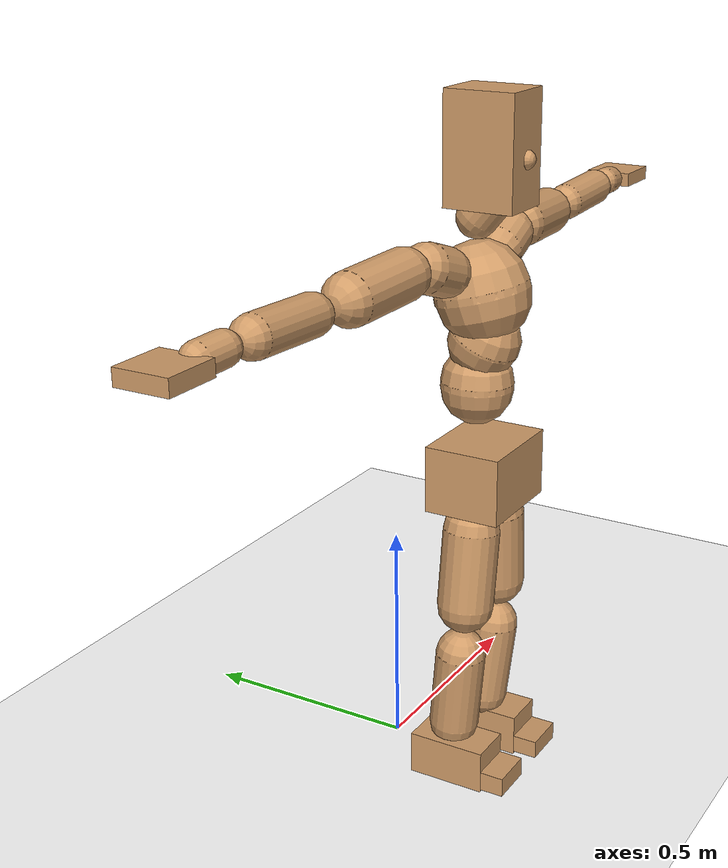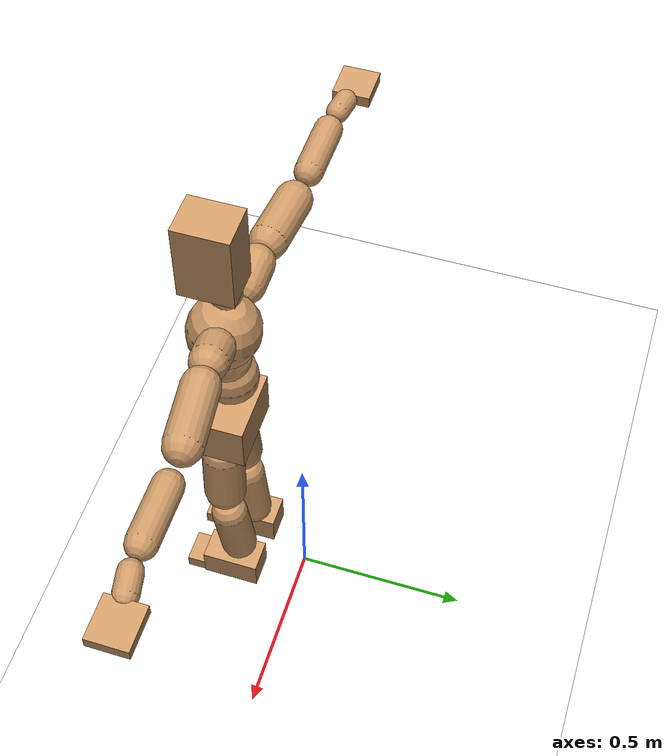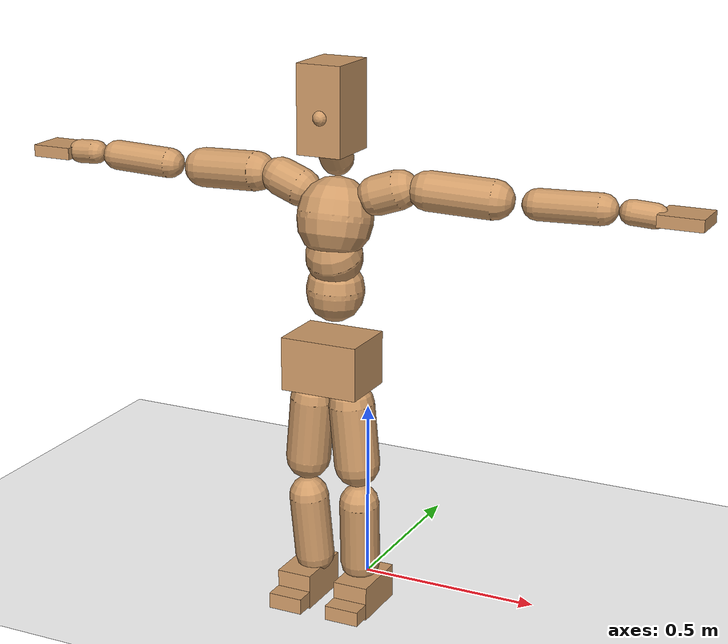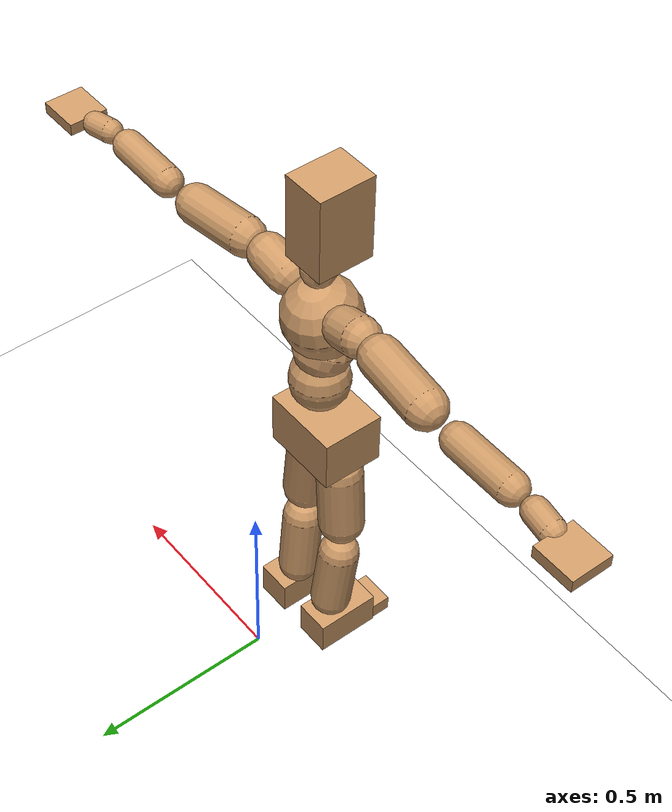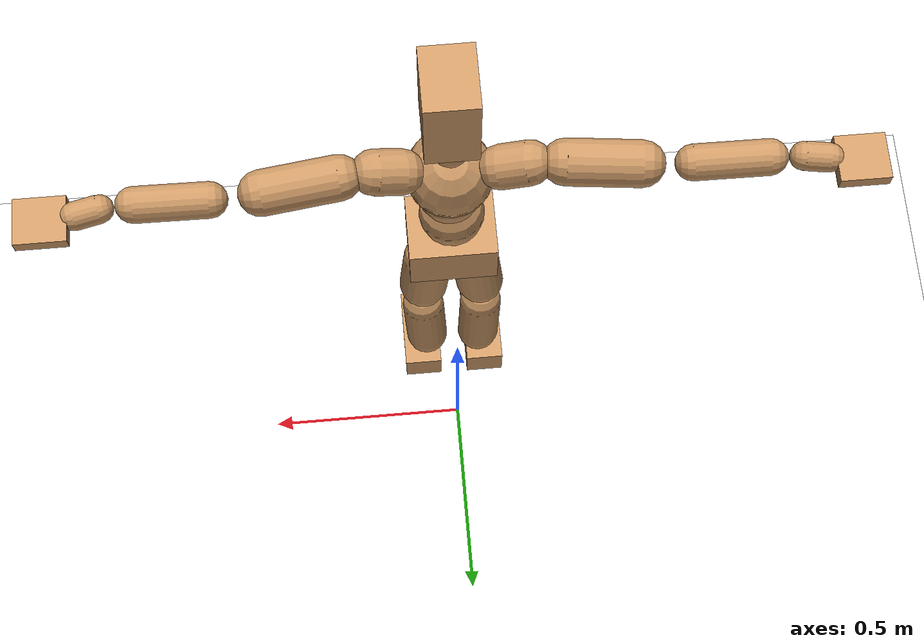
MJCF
<mujoco model="humanoid">
  <option integrator="implicitfast" />

  <visual>
    <global offwidth="1280" offheight="960" />
    <headlight active="1" ambient="0.34 0.34 0.34" diffuse="0.5 0.5 0.5" />
  </visual>

  <default>
    <joint damping="2" stiffness="2" armature="0.01" limited="true" solimplimit="0 .99 .01" />
    <geom condim="1" friction="0.7 0.005 0.0001" solimp=".99 .99 .003" solref="0.015 1" margin="0.001" rgba="0.8 0.6 .4 1" />
    <default class="smplcontact">
      <geom condim="3" friction="1. 0.005 0.0001" solref="0.015 1" solimp="0.98 0.98 0.001" priority="1" />
    </default>
    <default class="stiff_medium">
      <joint stiffness="10" />
    </default>
    <default class="stiff_medium_higher">
      <joint stiffness="50" />
    </default>
    <default class="stiff_high">
      <joint stiffness="100" />
    </default>
  </default>

  <asset>
    <texture type="skybox" builtin="gradient" rgb1="0.99 0.99 0.99" rgb2="0.608 0.828 0.892" width="100" />
    <texture builtin="flat" height="1278" mark="cross" markrgb="1 1 1" name="texgeom" random="0.01" rgb1="0.8 0.6 0.4" rgb2="0.8 0.6 0.4" type="cube" width="127" />
    <texture name="texplane" type="2d" builtin="checker" markrgb="1 1 1" rgb1="0.756 0.772 0.76" rgb2="0.6 0.6 0.6" width="100" height="100" />
    <material name="MatPlane" reflectance="0.5" texture="texplane" texrepeat="1 1" texuniform="true" />
    <material name="geom" texture="texgeom" texuniform="true" />
  </asset>

  <worldbody>
    <light name="tracking_light" pos="0 0 7" dir="0 0 -1" directional="true" cutoff="100" exponent="1" diffuse="1 1 1" specular="0.1 0.1 0.1" mode="trackcom" />
    <camera name="back" pos="0 3 2.4" xyaxes="-1 0 0 0 -1 2" mode="trackcom" />
    <camera name="side" pos="-3 0 2.4" xyaxes="0 -1 0 1 0 2" mode="trackcom" />
    <camera name="front_side" pos="-2.8 -2.8 0.8" xyaxes="0.5 -0.5 0 0.1 0.1 1" mode="trackcom" />
    <geom condim="3" name="floor" pos="0 0 0" rgba="1 1 1 1" size="100 100 .2" type="plane" material="MatPlane" />
    <body name="Pelvis" pos="-0.0018 -0.2233 0.714475" euler="90 0 0">
      <site name="Pelvis" size="0.01" />
      <freejoint name="Pelvis" />
      <geom type="box" pos="-0.0000 -0.0121 -0.0055" size="0.1069 0.0722 0.083" quat="1.0000 0.0000 0.0000 0.0000" density="3165.830099" name="Pelvis" />
      <body name="L_Hip" pos="0.052125 -0.06855 -0.0051">
        <joint name="L_Hip_x" type="hinge" pos="0 0 0" axis="1 0 0" stiffness="6.246094795918367" range="-160.0 22.92" class="stiff_medium" damping="8.291075045961078" armature="0.004891370984683403"/>
        <joint name="L_Hip_y" type="hinge" pos="0 0 0" axis="0 1 0" stiffness="6.283432346938776" range="-70.0 70.0" class="stiff_medium" damping="6.622206330553065" armature="0.006979245460609143"/>
        <joint name="L_Hip_z" type="hinge" pos="0 0 0" axis="0 0 1" stiffness="6.280236020408163" range="-28.65 90.0" class="stiff_medium" damping="5.5406378528423375" armature="0.004888139190404852"/>
        <geom type="capsule" density="2040.816327" fromto="0.005175 -0.05625 -0.000675 0.02055 -0.22515 -0.0027" size="0.0615" name="L_Hip" />
        <body name="L_Knee" pos="0.025725 -0.2814 -0.003375">
          <joint name="L_Knee_x" type="hinge" pos="0 0 0" axis="1 0 0" range="-5.16 171.89" damping="4.629153389768343" armature="0.005182973512521496" stiffness="1.292034693877551"/>
          <joint name="L_Knee_y" type="hinge" pos="0 0 0" axis="0 1 0" range="-4.58 6.88" damping="5.469884734588187" armature="0.007381715461698134" stiffness="1.2666279591836735"/>
          <joint name="L_Knee_z" type="hinge" pos="0 0 0" axis="0 0 1" range="-6.88 4.58" damping="4.641672627872137" armature="0.005166231774225991" stiffness="1.3032422448979593"/>
          <geom type="capsule" density="1234.567901" fromto="-0.002025 -0.0597 -0.006525 -0.008175 -0.2388 -0.02625" size="0.0541" name="L_Knee" />
          <body name="L_Ankle" pos="-0.0102 -0.2985 -0.032775">
            <joint name="L_Ankle_x" type="hinge" pos="0 0 0" axis="1 0 0" range="-45.84 45.84" class="stiff_medium" damping="4.385268345779539" armature="0.007122436468331859" stiffness="7.5"/>
            <joint name="L_Ankle_y" type="hinge" pos="0 0 0" axis="0 1 0" range="-74.48 22.92" class="stiff_medium" damping="2.2090505910878844" armature="0.007229488168867751" stiffness="7.5"/>
            <joint name="L_Ankle_z" type="hinge" pos="0 0 0" axis="0 0 1" range="-4.58 4.58" class="stiff_medium" damping="4.627293284407406" armature="0.00793031227404514" stiffness="7.5"/>
            <geom type="box" pos="0.017475 -0.017925 0.01815" size="0.0483 0.0464 0.085" quat="1.0000 0.0000 0.0000 0.0000" density="449.071558" name="L_Ankle" class="smplcontact" />
            <body name="L_Toe" pos="0.0198 -0.04185 0.089475">
              <joint name="L_Toe_x" type="hinge" pos="0 0 0" axis="1 0 0" range="-91.67 22.92" armature="0.00833667788750382" damping="1.5814560905226378" stiffness="1.5"/>
              <joint name="L_Toe_y" type="hinge" pos="0 0 0" axis="0 1 0" range="-4.58 4.58" armature="0.008828055290798205" damping="1.6273956455759186" stiffness="1.5"/>
              <joint name="L_Toe_z" type="hinge" pos="0 0 0" axis="0 0 1" range="-4.58 4.58" armature="0.009821593951993812" damping="1.7165308577471432" stiffness="1.5"/>
              <geom type="box" pos="-0.00225 0.004125 0.0186" size="0.0478 0.02 0.0496" quat="1.0000 0.0000 0.0000 0.0000" density="423.206892" name="L_Toe" class="smplcontact" />
            </body>
          </body>
        </body>
      </body>
      <body name="R_Hip" pos="-0.050775 -0.067875 -0.003225">
        <joint name="R_Hip_x" type="hinge" pos="0 0 0" axis="1 0 0" stiffness="6.246094795918367" range="-160.0 22.92" class="stiff_medium" damping="8.291075045961078" armature="0.004891370984683403"/>
        <joint name="R_Hip_y" type="hinge" pos="0 0 0" axis="0 1 0" stiffness="6.283432346938776" range="-70.0 70.0" class="stiff_medium" damping="6.622206330553065" armature="0.006979245460609143"/>
        <joint name="R_Hip_z" type="hinge" pos="0 0 0" axis="0 0 1" stiffness="6.280236020408163" range="-90.0 28.65" class="stiff_medium" damping="5.5406378528423375" armature="0.004888139190404852"/>
        <geom type="capsule" density="2040.816327" fromto="-0.005775 -0.057375 -0.00135 -0.02295 -0.229575 -0.005325" size="0.0606" name="R_Hip" />
        <body name="R_Knee" pos="-0.028725 -0.28695 -0.006675">
          <joint name="R_Knee_x" type="hinge" pos="0 0 0" axis="1 0 0" range="-5.16 171.89" damping="4.629153389768343" armature="0.005182973512521496" stiffness="1.292034693877551"/>
          <joint name="R_Knee_y" type="hinge" pos="0 0 0" axis="0 1 0" range="-6.88 4.58" damping="5.469884734588187" armature="0.007381715461698134" stiffness="1.2666279591836735"/>
          <joint name="R_Knee_z" type="hinge" pos="0 0 0" axis="0 0 1" range="-4.58 6.88" damping="4.641672627872137" armature="0.005166231774225991" stiffness="1.3032422448979593"/>
          <geom type="capsule" density="1234.567901" fromto="0.0024 -0.059775 -0.006375 0.00945 -0.239025 -0.02535" size="0.0541" name="R_Knee" />
          <body name="R_Ankle" pos="0.01185 -0.2988 -0.031725">
            <joint name="R_Ankle_x" type="hinge" pos="0 0 0" axis="1 0 0" range="-45.84 45.84" class="stiff_medium" damping="4.385268345779539" armature="0.007122436468331859" stiffness="7.5"/>
            <joint name="R_Ankle_y" type="hinge" pos="0 0 0" axis="0 1 0" range="-22.92 74.48" class="stiff_medium" damping="2.2090505910878844" armature="0.007229488168867751" stiffness="7.5"/>
            <joint name="R_Ankle_z" type="hinge" pos="0 0 0" axis="0 0 1" range="-4.58 4.58" class="stiff_medium" damping="4.627293284407406" armature="0.00793031227404514" stiffness="7.5"/>
            <geom type="box" pos="-0.0159 -0.01305 0.0192" size="0.0483 0.0478 0.0865" quat="1.0000 0.0000 0.0000 0.0000" density="434.700981" name="R_Ankle" class="smplcontact" />
            <body name="R_Toe" pos="-0.01905 -0.036075 0.092475">
              <joint name="R_Toe_x" type="hinge" pos="0 0 0" axis="1 0 0" range="-91.67 22.92" armature="0.00833667788750382" damping="1.5814560905226378" stiffness="1.5"/>
              <joint name="R_Toe_y" type="hinge" pos="0 0 0" axis="0 1 0" range="-4.58 4.58" armature="0.008828055290798205" damping="1.6273956455759186" stiffness="1.5"/>
              <joint name="R_Toe_z" type="hinge" pos="0 0 0" axis="0 0 1" range="-4.58 4.58" armature="0.009821593951993812" damping="1.7165308577471432" stiffness="1.5"/>
              <geom type="box" pos="0.00315 0.003375 0.017025" size="0.0479 0.0216 0.0493" quat="1.0000 0.0000 0.0000 0.0000" density="407.384095" name="R_Toe" class="smplcontact" />
            </body>
          </body>
        </body>
      </body>
      <body name="Torso" pos="-0.0025 0.109 -0.0267">
        <joint name="Torso_x" type="hinge" pos="0 0 0" axis="1 0 0" range="-25.78 57.3" class="stiff_medium" damping="15.601174334598198" armature="0.01047626555893536" stiffness="10.325844081632653"/>
        <joint name="Torso_y" type="hinge" pos="0 0 0" axis="0 1 0" range="-57.3 57.3" class="stiff_high" damping="22.82133861051783" armature="0.012668353656497756" stiffness="102.77844897959183"/>
        <joint name="Torso_z" type="hinge" pos="0 0 0" axis="0 0 1" range="-34.38 34.38" class="stiff_high" damping="21.414857312023496" armature="0.011223378132891131" stiffness="102.15197872340424"/>
        <geom type="capsule" density="2040.816327" fromto="0.0025 0.0608 0.0005 0.003 0.0743 0.0006" size="0.0769" name="Torso" />
        <body name="Spine" pos="0.0055 0.1352 0.0011">
          <joint name="Spine_x" type="hinge" pos="0 0 0" axis="1 0 0" stiffness="10.390365918367348" range="-25.78 57.3" class="stiff_medium" damping="15.726774537984076" armature="0.010579519926301018"/>
          <joint name="Spine_y" type="hinge" pos="0 0 0" axis="0 1 0" stiffness="10.39918551020408" range="-57.3 57.3" class="stiff_high" damping="9.188969975740159" armature="0.012686866367473126"/>
          <joint name="Spine_z" type="hinge" pos="0 0 0" axis="0 0 1" stiffness="20.94420693877551" range="-34.38 34.38" class="stiff_high" damping="13.309204568844793" armature="0.011746481097584327"/>
          <geom type="capsule" density="2040.816327" fromto="0.0007 0.0238 0.0114 0.0008 0.0291 0.014" size="0.0755" name="Spine" />
          <body name="Chest" pos="0.0015 0.0529 0.0254">
            <joint name="Chest_x" type="hinge" pos="0 0 0" axis="1 0 0" stiffness="10.58973530612245" range="-25.78 57.3" class="stiff_medium" damping="15.92350290907025" armature="0.010641665414267271"/>
            <joint name="Chest_y" type="hinge" pos="0 0 0" axis="0 1 0" stiffness="11.123088958333334" range="-57.3 57.3" class="stiff_high" damping="9.504893386205907" armature="0.012690803368218215"/>
            <joint name="Chest_z" type="hinge" pos="0 0 0" axis="0 0 1" stiffness="21.003702448979592" range="-34.38 34.38" class="stiff_high" damping="13.458190566120907" armature="0.011976915720374785"/>
            <geom type="capsule" density="2040.816327" fromto="-0.0009 0.0682 -0.0173 -0.001 0.0833 -0.0212" size="0.1002" name="Chest" />
            <body name="Neck" pos="-0.0028 0.2139 -0.0429">
              <joint name="Neck_x" type="hinge" pos="0 0 0" axis="1 0 0" range="-28.65 57.3" class="stiff_medium_higher" damping="10.000000000000016" armature="0.010000000000000033" stiffness="50.0"/>
              <joint name="Neck_y" type="hinge" pos="0 0 0" axis="0 1 0" range="-40.11 40.11" class="stiff_medium_higher" damping="10.0" armature="0.01" stiffness="50.0"/>
              <joint name="Neck_z" type="hinge" pos="0 0 0" axis="0 0 1" range="-40.11 40.11" class="stiff_medium_higher" damping="10.000000000000018" armature="0.010000000000000035" stiffness="50.0"/>
              <geom type="capsule" density="1000" fromto="0.001 0.013 0.0103 0.0041 0.052 0.0411" size="0.0436" name="Neck" />
              <body name="Head" pos="0.0052 0.065 0.0513">
                <joint name="Head_x" type="hinge" pos="0 0 0" axis="1 0 0" range="-28.65 57.3" class="stiff_medium_higher" damping="2.0000000000000058" armature="0.010000000000000057" stiffness="50.0"/>
                <joint name="Head_y" type="hinge" pos="0 0 0" axis="0 1 0" range="-40.11 40.11" class="stiff_medium_higher" damping="1.9999999999999998" armature="0.009999999999999998" stiffness="50.0"/>
                <joint name="Head_z" type="hinge" pos="0 0 0" axis="0 0 1" range="-40.11 40.11" class="stiff_medium_higher" damping="2.0000000000000098" armature="0.010000000000000097" stiffness="50.0"/>
                <geom type="box" pos="-0.0042 0.0876 -0.0116" size="0.0606 0.1154 0.076" quat="1.0000 0.0000 0.0000 0.0000" density="1018.069894" name="Head" />
                <geom type="capsule" name="nose" size="0.02 0.01" pos="0 0.07 0.05" quat="1 0 0 0" mass="0" contype="0" conaffinity="0" />
              </body>
            </body>
            <body name="L_Thorax" pos="0.08668 0.13387 -0.03751">
              <joint name="L_Thorax_x" type="hinge" pos="0 0 0" axis="1 0 0" range="-10.89 4.58" class="stiff_medium_higher" damping="23.48495305351737" armature="0.011814903262347243" stiffness="58.352468877551026"/>
              <joint name="L_Thorax_y" type="hinge" pos="0 0 0" axis="0 1 0" range="-28.65 17.19" class="stiff_medium_higher" damping="24.4348841915211" armature="0.012759387174304939" stiffness="58.49257857142858"/>
              <joint name="L_Thorax_z" type="hinge" pos="0 0 0" axis="0 0 1" range="-31.51 40.11" class="stiff_medium_higher" damping="24.435380867856836" armature="0.012760243243334092" stiffness="58.491032142857144"/>
              <geom type="capsule" density="1000" fromto="0.02002 0.00671 -0.00198 0.08008 0.02684 -0.00781" size="0.0521" name="L_Thorax" />
              <body name="L_Shoulder" pos="0.1001 0.03355 -0.00979">
                <joint name="L_Shoulder_x" type="hinge" pos="0 0 0" axis="1 0 0" range="-97.4 97.4" class="stiff_medium" damping="6.925509502214041" armature="0.01143614113174866" stiffness="11.64988"/>
                <joint name="L_Shoulder_y" type="hinge" pos="0 0 0" axis="0 1 0" range="-108.86 80.21" class="stiff_medium" damping="7.316560324521945" armature="0.012722359703116887" stiffness="11.68809530612245"/>
                <joint name="L_Shoulder_z" type="hinge" pos="0 0 0" axis="0 0 1" range="-97.4 85.94" class="stiff_medium" damping="7.316164081346807" armature="0.012723435702067633" stiffness="11.685841020408162"/>
                <geom type="capsule" density="1000" fromto="0.05709 -0.00286 -0.00605 0.22847 -0.01122 -0.0242" size="0.0517" name="L_Shoulder" />
                <body name="L_Elbow" pos="0.28556 -0.01408 -0.03025">
                  <joint name="L_Elbow_x" type="hinge" pos="0 0 0" axis="1 0 0" range="-17.19 4.58" damping="5.601396344944956" armature="0.010847020977713322" stiffness="2.314046673469388"/>
                  <joint name="L_Elbow_y" type="hinge" pos="0 0 0" axis="0 1 0" range="-180.0 17.19" damping="6.023798480907975" armature="0.012542680731684346" stiffness="2.3144110204081634"/>
                  <joint name="L_Elbow_z" type="hinge" pos="0 0 0" axis="0 0 1" range="-100.84 4.58" damping="6.0243464724178075" armature="0.012548321640758904" stiffness="2.313791530612245"/>
                  <geom type="capsule" density="1000" fromto="0.05478 0.00198 -0.00022 0.21934 0.00792 -0.00099" size="0.0405" name="L_Elbow" />
                  <body name="L_Wrist" pos="0.27412 0.0099 -0.00132">
                    <joint name="L_Wrist_x" type="hinge" pos="0 0 0" axis="1 0 0" range="-180.0 22.92" armature="0.010707540477697832" damping="2.1901175856848" stiffness="2.2398304489795917"/>
                    <joint name="L_Wrist_y" type="hinge" pos="0 0 0" axis="0 1 0" range="-17.19 17.19" armature="0.011962634992803438" damping="2.317938796584466" stiffness="2.245675918367347"/>
                    <joint name="L_Wrist_z" type="hinge" pos="0 0 0" axis="0 0 1" range="-22.92 22.92" armature="0.012031856829646057" damping="2.3234148559287777" stiffness="2.2433181632653056"/>
                    <geom type="capsule" density="1000" fromto="0.01848 -0.00176 -0.0033 0.07392 -0.00715 -0.0132" size="0.0318" name="L_Wrist" class="smplcontact" />
                    <body name="L_Hand" pos="0.0924 -0.00902 -0.01639">
                      <joint name="L_Hand_x" type="hinge" pos="0 0 0" axis="1 0 0" range="-17.19 17.19" armature="0.010091488937093109" damping="2.107191289921484" stiffness="2.1999999999999997"/>
                      <joint name="L_Hand_y" type="hinge" pos="0 0 0" axis="0 1 0" range="-51.57 51.57" armature="0.011106432471592842" damping="2.2106176258007286" stiffness="2.1999999999999997"/>
                      <joint name="L_Hand_z" type="hinge" pos="0 0 0" axis="0 0 1" range="-91.67 91.67" armature="0.011376979537969302" damping="2.2373803871283244" stiffness="2.1999999999999997"/>
                      <geom type="box" pos="0.05423 0.0011 -0.00638" size="0.0585 0.0158 0.0538" quat="1.0000 0.0000 0.0000 0.0000" density="400.552564" name="L_Hand" class="smplcontact" />
                    </body>
                  </body>
                </body>
              </body>
            </body>
            <body name="R_Thorax" pos="-0.08998 0.13068 -0.04246">
              <joint name="R_Thorax_x" type="hinge" pos="0 0 0" axis="1 0 0" range="-10.89 4.58" class="stiff_medium_higher" damping="23.48495305351737" armature="0.011814903262347243" stiffness="58.352468877551026"/>
              <joint name="R_Thorax_y" type="hinge" pos="0 0 0" axis="0 1 0" range="-17.19 28.65" class="stiff_medium_higher" damping="24.4348841915211" armature="0.012759387174304939" stiffness="58.49257857142858"/>
              <joint name="R_Thorax_z" type="hinge" pos="0 0 0" axis="0 0 1" range="-40.11 31.51" class="stiff_medium_higher" damping="24.435380867856836" armature="0.012760243243334092" stiffness="58.491032142857144"/>
              <geom type="capsule" density="1000" fromto="-0.02112 0.00715 -0.00198 -0.08448 0.0286 -0.00803" size="0.0511" name="R_Thorax" />
              <body name="R_Shoulder" pos="-0.1056 0.03586 -0.01001">
                <joint name="R_Shoulder_x" type="hinge" pos="0 0 0" axis="1 0 0" range="-97.4 97.4" class="stiff_medium" damping="6.925509502214041" armature="0.01143614113174866" stiffness="11.64988"/>
                <joint name="R_Shoulder_y" type="hinge" pos="0 0 0" axis="0 1 0" range="-80.21 108.86" class="stiff_medium" damping="7.316560324521945" armature="0.012722359703116887" stiffness="11.68809530612245"/>
                <joint name="R_Shoulder_z" type="hinge" pos="0 0 0" axis="0 0 1" range="-85.94 97.4" class="stiff_medium" damping="7.316164081346807" armature="0.012723435702067633" stiffness="11.685841020408162"/>
                <geom type="capsule" density="1000" fromto="-0.05577 -0.00297 -0.00473 -0.2233 -0.01177 -0.01881" size="0.0531" name="R_Shoulder" />
                <body name="R_Elbow" pos="-0.27907 -0.01463 -0.02354">
                  <joint name="R_Elbow_x" type="hinge" pos="0 0 0" axis="1 0 0" range="-17.19 4.58" damping="5.601396344944956" armature="0.010847020977713322" stiffness="2.314046673469388"/>
                  <joint name="R_Elbow_y" type="hinge" pos="0 0 0" axis="0 1 0" range="-17.19 180.0" damping="6.023798480907975" armature="0.012542680731684346" stiffness="2.3144110204081634"/>
                  <joint name="R_Elbow_z" type="hinge" pos="0 0 0" axis="0 0 1" range="-4.58 100.84" damping="6.0243464724178075" armature="0.012548321640758904" stiffness="2.313791530612245"/>
                  <geom type="capsule" density="1000" fromto="-0.05621 0.00176 -0.00121 -0.22462 0.00682 -0.00484" size="0.0408" name="R_Elbow" />
                  <body name="R_Wrist" pos="-0.28083 0.00858 -0.00616">
                    <joint name="R_Wrist_x" type="hinge" pos="0 0 0" axis="1 0 0" range="-180.0 22.92" armature="0.010707540477697832" damping="2.1901175856848" stiffness="2.2398304489795917"/>
                    <joint name="R_Wrist_y" type="hinge" pos="0 0 0" axis="0 1 0" range="-17.19 17.19" armature="0.011962634992803438" damping="2.317938796584466" stiffness="2.245675918367347"/>
                    <joint name="R_Wrist_z" type="hinge" pos="0 0 0" axis="0 0 1" range="-22.92 22.92" armature="0.012031856829646057" damping="2.3234148559287777" stiffness="2.2433181632653056"/>
                    <geom type="capsule" density="1000" fromto="-0.01859 -0.00132 -0.00231 -0.07447 -0.00539 -0.00913" size="0.0326" name="R_Wrist" class="smplcontact" />
                    <body name="R_Hand" pos="-0.09306 -0.00671 -0.01133">
                      <joint name="R_Hand_x" type="hinge" pos="0 0 0" axis="1 0 0" range="-17.19 17.19" armature="0.010091488937093109" damping="2.107191289921484" stiffness="2.1999999999999997"/>
                      <joint name="R_Hand_y" type="hinge" pos="0 0 0" axis="0 1 0" range="-51.57 51.57" armature="0.011106432471592842" damping="2.2106176258007286" stiffness="2.1999999999999997"/>
                      <joint name="R_Hand_z" type="hinge" pos="0 0 0" axis="0 0 1" range="-91.67 91.67" armature="0.011376979537969302" damping="2.2373803871283244" stiffness="2.1999999999999997"/>
                      <geom type="box" pos="-0.05082 -0.00099 -0.00869" size="0.0569 0.0164 0.0546" quat="1.0000 0.0000 0.0000 0.0000" density="403.679611" name="R_Hand" class="smplcontact" />
                    </body>
                  </body>
                </body>
              </body>
            </body>
          </body>
        </body>
      </body>
    </body>
  </worldbody>
  <actuator>
    <general name="L_Hip_x" joint="L_Hip_x" biastype="affine" gainprm="179.46908180691764" biasprm="-134.4938865848036 -112.42970632653059 -1.1054766727948104" ctrllimited="true" ctrlrange="-1 1" forcerange="-224.85941265306118 224.85941265306118" />
    <general name="L_Hip_y" joint="L_Hip_y" biastype="affine" gainprm="138.1798943032993" biasprm="0.0 -113.10178224489796 -1.324441266110613" ctrllimited="true" ctrlrange="-1 1" forcerange="-226.20356448979592 226.20356448979592" />
    <general name="L_Hip_z" joint="L_Hip_z" biastype="affine" gainprm="117.04788889139031" biasprm="60.52160120932823 -113.04424836734694 -1.1081275705684674" ctrllimited="true" ctrlrange="-1 1" forcerange="-226.08849673469388 226.08849673469388" />
    <general name="L_Knee_x" joint="L_Knee_x" biastype="affine" gainprm="179.66355466802756" biasprm="169.1912141756579 -116.2831224489796 -1.1572883474420856" ctrllimited="true" ctrlrange="-1 1" forcerange="-232.5662448979592 232.5662448979592" />
    <general name="L_Knee_y" joint="L_Knee_y" biastype="affine" gainprm="11.400491346869197" biasprm="2.2880567275566452 -113.99651632653062 -1.3674711836470468" ctrllimited="true" ctrlrange="-1 1" forcerange="-227.99303265306125 227.99303265306125" />
    <general name="L_Knee_z" joint="L_Knee_z" biastype="affine" gainprm="11.730044191831292" biasprm="-2.3541973508910967 -117.29180204081634 -1.1604181569680343" ctrllimited="true" ctrlrange="-1 1" forcerange="-234.58360408163267 234.58360408163267" />
    <general name="L_Ankle_x" joint="L_Ankle_x" biastype="affine" gainprm="54.00397771520855" biasprm="0.0 -67.5 -1.4617561152598464" ctrllimited="true" ctrlrange="-1 1" forcerange="-135.0 135.0" />
    <general name="L_Ankle_y" joint="L_Ankle_y" biastype="affine" gainprm="57.37333583618361" biasprm="-30.371346978579332 -67.5 -1.4727003940585897" ctrllimited="true" ctrlrange="-1 1" forcerange="-135.0 135.0" />
    <general name="L_Ankle_z" joint="L_Ankle_z" biastype="affine" gainprm="5.395685382540469" biasprm="0.0 -67.5 -1.5424310948024686" ctrllimited="true" ctrlrange="-1 1" forcerange="-135.0 135.0" />
    <general name="L_Toe_x" joint="L_Toe_x" biastype="affine" gainprm="53.999265326228155" biasprm="-32.39767424014474 -54.0 -0.6325824362090552" ctrllimited="true" ctrlrange="-1 1" forcerange="-108.0 108.0" />
    <general name="L_Toe_y" joint="L_Toe_y" biastype="affine" gainprm="4.3165483060323755" biasprm="0.0 -54.0 -0.6509582582303675" ctrllimited="true" ctrlrange="-1 1" forcerange="-108.0 108.0" />
    <general name="L_Toe_z" joint="L_Toe_z" biastype="affine" gainprm="4.3165483060323755" biasprm="0.0 -54.0 -0.6866123430988573" ctrllimited="true" ctrlrange="-1 1" forcerange="-108.0 108.0" />
    <general name="R_Hip_x" joint="R_Hip_x" biastype="affine" gainprm="179.46908180691764" biasprm="-134.4938865848036 -112.42970632653059 -1.1054766727948104" ctrllimited="true" ctrlrange="-1 1" forcerange="-224.85941265306118 224.85941265306118" />
    <general name="R_Hip_y" joint="R_Hip_y" biastype="affine" gainprm="138.1798943032993" biasprm="0.0 -113.10178224489796 -1.324441266110613" ctrllimited="true" ctrlrange="-1 1" forcerange="-226.20356448979592 226.20356448979592" />
    <general name="R_Hip_z" joint="R_Hip_z" biastype="affine" gainprm="117.04788889139031" biasprm="-60.52160120932823 -113.04424836734694 -1.1081275705684674" ctrllimited="true" ctrlrange="-1 1" forcerange="-226.08849673469388 226.08849673469388" />
    <general name="R_Knee_x" joint="R_Knee_x" biastype="affine" gainprm="179.66355466802756" biasprm="169.1912141756579 -116.2831224489796 -1.1572883474420856" ctrllimited="true" ctrlrange="-1 1" forcerange="-232.5662448979592 232.5662448979592" />
    <general name="R_Knee_y" joint="R_Knee_y" biastype="affine" gainprm="11.400491346869197" biasprm="-2.2880567275566452 -113.99651632653062 -1.3674711836470468" ctrllimited="true" ctrlrange="-1 1" forcerange="-227.99303265306125 227.99303265306125" />
    <general name="R_Knee_z" joint="R_Knee_z" biastype="affine" gainprm="11.730044191831292" biasprm="2.3541973508910967 -117.29180204081634 -1.1604181569680343" ctrllimited="true" ctrlrange="-1 1" forcerange="-234.58360408163267 234.58360408163267" />
    <general name="R_Ankle_x" joint="R_Ankle_x" biastype="affine" gainprm="54.00397771520855" biasprm="0.0 -67.5 -1.4617561152598464" ctrllimited="true" ctrlrange="-1 1" forcerange="-135.0 135.0" />
    <general name="R_Ankle_y" joint="R_Ankle_y" biastype="affine" gainprm="57.37333583618361" biasprm="30.371346978579332 -67.5 -1.4727003940585897" ctrllimited="true" ctrlrange="-1 1" forcerange="-135.0 135.0" />
    <general name="R_Ankle_z" joint="R_Ankle_z" biastype="affine" gainprm="5.395685382540469" biasprm="0.0 -67.5 -1.5424310948024686" ctrllimited="true" ctrlrange="-1 1" forcerange="-135.0 135.0" />
    <general name="R_Toe_x" joint="R_Toe_x" biastype="affine" gainprm="53.999265326228155" biasprm="-32.39767424014474 -54.0 -0.6325824362090552" ctrllimited="true" ctrlrange="-1 1" forcerange="-108.0 108.0" />
    <general name="R_Toe_y" joint="R_Toe_y" biastype="affine" gainprm="4.3165483060323755" biasprm="0.0 -54.0 -0.6509582582303675" ctrllimited="true" ctrlrange="-1 1" forcerange="-108.0 108.0" />
    <general name="R_Toe_z" joint="R_Toe_z" biastype="affine" gainprm="4.3165483060323755" biasprm="0.0 -54.0 -0.6866123430988573" ctrllimited="true" ctrlrange="-1 1" forcerange="-108.0 108.0" />
    <general name="Torso_x" joint="Torso_x" biastype="affine" gainprm="179.67210854115288" biasprm="68.16640420338393 -247.8202579591837 -4.160313155892853" ctrllimited="true" ctrlrange="-1 1" forcerange="-371.73038693877555 371.73038693877555" />
    <general name="Torso_y" joint="Torso_y" biastype="affine" gainprm="246.68644747989222" biasprm="0.0 -246.6682775510204 -4.564267722103566" ctrllimited="true" ctrlrange="-1 1" forcerange="-370.0024163265306 370.0024163265306" />
    <general name="Torso_z" joint="Torso_z" biastype="affine" gainprm="147.10968486781817" biasprm="0.0 -245.16474893617018 -4.282971462404699" ctrllimited="true" ctrlrange="-1 1" forcerange="-367.74712340425526 367.74712340425526" />
    <general name="Spine_x" joint="Spine_x" biastype="affine" gainprm="180.79480363139655" biasprm="68.5923472612135 -249.36878204081634 -4.19380654346242" ctrllimited="true" ctrlrange="-1 1" forcerange="-374.0531730612245 374.0531730612245" />
    <general name="Spine_y" joint="Spine_y" biastype="affine" gainprm="249.59883668861366" biasprm="0.0 -249.58045224489794 -4.5944849878700795" ctrllimited="true" ctrlrange="-1 1" forcerange="-374.3706783673469 374.3706783673469" />
    <general name="Spine_z" joint="Spine_z" biastype="affine" gainprm="150.8093979712465" biasprm="0.0 -251.3304832653061 -4.436401522948264" ctrllimited="true" ctrlrange="-1 1" forcerange="-376.9957248979592 376.9957248979592" />
    <general name="Chest_x" joint="Chest_x" biastype="affine" gainprm="184.26387773258654" biasprm="69.90849092598852 -254.15364734693878 -4.246267442418733" ctrllimited="true" ctrlrange="-1 1" forcerange="-381.2304710204082 381.2304710204082" />
    <general name="Chest_y" joint="Chest_y" biastype="affine" gainprm="266.97379921338467" biasprm="0.0 -266.954135 -4.752446693102954" ctrllimited="true" ctrlrange="-1 1" forcerange="-400.43120250000004 400.43120250000004" />
    <general name="Chest_z" joint="Chest_z" biastype="affine" gainprm="151.23779719887534" biasprm="0.0 -252.0444293877551 -4.486063522040302" ctrllimited="true" ctrlrange="-1 1" forcerange="-378.06664408163266 378.06664408163266" />
    <general name="Neck_x" joint="Neck_x" biastype="affine" gainprm="27.00198885760427" biasprm="9.000662952534757 -36.0 -0.8000000000000013" ctrllimited="true" ctrlrange="-1 1" forcerange="-72.0 72.0" />
    <general name="Neck_y" joint="Neck_y" biastype="affine" gainprm="25.20185626709732" biasprm="0.0 -36.0 -0.8" ctrllimited="true" ctrlrange="-1 1" forcerange="-72.0 72.0" />
    <general name="Neck_z" joint="Neck_z" biastype="affine" gainprm="25.20185626709732" biasprm="0.0 -36.0 -0.8000000000000015" ctrllimited="true" ctrlrange="-1 1" forcerange="-72.0 72.0" />
    <general name="Head_x" joint="Head_x" biastype="affine" gainprm="18.001325905069514" biasprm="6.000441968356505 -24.0 -0.8000000000000024" ctrllimited="true" ctrlrange="-1 1" forcerange="-48.0 48.0" />
    <general name="Head_y" joint="Head_y" biastype="affine" gainprm="16.801237511398213" biasprm="0.0 -24.0 -0.7999999999999999" ctrllimited="true" ctrlrange="-1 1" forcerange="-48.0 48.0" />
    <general name="Head_z" joint="Head_z" biastype="affine" gainprm="16.801237511398213" biasprm="0.0 -24.0 -0.8000000000000039" ctrllimited="true" ctrlrange="-1 1" forcerange="-48.0 48.0" />
    <general name="L_Thorax_x" joint="L_Thorax_x" biastype="affine" gainprm="18.906370442093692" biasprm="-7.711648189373708 -140.04592530612246 -1.8787962442813897" ctrllimited="true" ctrlrange="-1 1" forcerange="-280.0918506122449 280.0918506122449" />
    <general name="L_Thorax_y" joint="L_Thorax_y" biastype="affine" gainprm="56.157011727582464" biasprm="-14.039252931895616 -140.38218857142857 -1.954790735321688" ctrllimited="true" ctrlrange="-1 1" forcerange="-280.76437714285714 280.76437714285714" />
    <general name="L_Thorax_z" joint="L_Thorax_z" biastype="affine" gainprm="87.73688584405964" biasprm="10.535286487837375 -140.37847714285715 -1.954830469428547" ctrllimited="true" ctrlrange="-1 1" forcerange="-280.7569542857143 280.7569542857143" />
    <general name="L_Shoulder_x" joint="L_Shoulder_x" biastype="affine" gainprm="95.06026349386505" biasprm="0.0 -55.91942399999999 -1.8468025339237444" ctrllimited="true" ctrlrange="-1 1" forcerange="-111.83884799999998 111.83884799999998" />
    <general name="L_Shoulder_y" joint="L_Shoulder_y" biastype="affine" gainprm="92.56674184278414" biasprm="-14.026747521001564 -56.10285746938776 -1.9510827532058521" ctrllimited="true" ctrlrange="-1 1" forcerange="-112.20571493877551 112.20571493877551" />
    <general name="L_Shoulder_z" joint="L_Shoulder_z" biastype="affine" gainprm="89.7440800375507" biasprm="-5.609616871551944 -56.09203689795918 -1.9509770883591486" ctrllimited="true" ctrlrange="-1 1" forcerange="-112.18407379591837 112.18407379591837" />
    <general name="L_Elbow_x" joint="L_Elbow_x" biastype="affine" gainprm="15.82633724808071" biasprm="-9.167207749117953 -83.30568024489797 -0.8962234151911931" ctrllimited="true" ctrlrange="-1 1" forcerange="-166.61136048979594 166.61136048979594" />
    <general name="L_Elbow_y" joint="L_Elbow_y" biastype="affine" gainprm="143.37559998082332" biasprm="-118.37811974683223 -83.31879673469388 -0.963807756945276" ctrllimited="true" ctrlrange="-1 1" forcerange="-166.63759346938775 166.63759346938775" />
    <general name="L_Elbow_z" joint="L_Elbow_z" biastype="affine" gainprm="76.62969758228138" biasprm="-69.9713023076305 -83.29649510204082 -0.9638954355868492" ctrllimited="true" ctrlrange="-1 1" forcerange="-166.59299020408164 166.59299020408164" />
    <general name="L_Wrist_x" joint="L_Wrist_x" biastype="affine" gainprm="23.797899177015026" biasprm="-18.421910125791054 -13.43898269387755 -0.8760470342739201" ctrllimited="true" ctrlrange="-1 1" forcerange="-26.8779653877551 26.8779653877551" />
    <general name="L_Wrist_y" joint="L_Wrist_y" biastype="affine" gainprm="4.042514408369691" biasprm="0.0 -13.474055510204082 -0.9271755186337866" ctrllimited="true" ctrlrange="-1 1" forcerange="-26.948111020408163 26.948111020408163" />
    <general name="L_Wrist_z" joint="L_Wrist_z" biastype="affine" gainprm="5.384360182093428" biasprm="0.0 -13.459908979591834 -0.9293659423715112" ctrllimited="true" ctrlrange="-1 1" forcerange="-26.919817959183668 26.919817959183668" />
    <general name="L_Hand_x" joint="L_Hand_x" biastype="affine" gainprm="3.9602916991152934" biasprm="0.0 -13.2 -0.8428765159685936" ctrllimited="true" ctrlrange="-1 1" forcerange="-26.4 26.4" />
    <general name="L_Hand_y" joint="L_Hand_y" biastype="affine" gainprm="11.880875097345879" biasprm="0.0 -13.2 -0.8842470503202915" ctrllimited="true" ctrlrange="-1 1" forcerange="-26.4 26.4" />
    <general name="L_Hand_z" joint="L_Hand_z" biastype="affine" gainprm="21.11925189400226" biasprm="0.0 -13.2 -0.8949521548513298" ctrllimited="true" ctrlrange="-1 1" forcerange="-26.4 26.4" />
    <general name="R_Thorax_x" joint="R_Thorax_x" biastype="affine" gainprm="18.906370442093692" biasprm="-7.711648189373708 -140.04592530612246 -1.8787962442813897" ctrllimited="true" ctrlrange="-1 1" forcerange="-280.0918506122449 280.0918506122449" />
    <general name="R_Thorax_y" joint="R_Thorax_y" biastype="affine" gainprm="56.157011727582464" biasprm="14.039252931895607 -140.38218857142857 -1.954790735321688" ctrllimited="true" ctrlrange="-1 1" forcerange="-280.76437714285714 280.76437714285714" />
    <general name="R_Thorax_z" joint="R_Thorax_z" biastype="affine" gainprm="87.73688584405964" biasprm="-10.535286487837375 -140.37847714285715 -1.954830469428547" ctrllimited="true" ctrlrange="-1 1" forcerange="-280.7569542857143 280.7569542857143" />
    <general name="R_Shoulder_x" joint="R_Shoulder_x" biastype="affine" gainprm="95.06026349386505" biasprm="0.0 -55.91942399999999 -1.8468025339237444" ctrllimited="true" ctrlrange="-1 1" forcerange="-111.83884799999998 111.83884799999998" />
    <general name="R_Shoulder_y" joint="R_Shoulder_y" biastype="affine" gainprm="92.56674184278414" biasprm="14.026747521001564 -56.10285746938776 -1.9510827532058521" ctrllimited="true" ctrlrange="-1 1" forcerange="-112.20571493877551 112.20571493877551" />
    <general name="R_Shoulder_z" joint="R_Shoulder_z" biastype="affine" gainprm="89.7440800375507" biasprm="5.609616871551932 -56.09203689795918 -1.9509770883591486" ctrllimited="true" ctrlrange="-1 1" forcerange="-112.18407379591837 112.18407379591837" />
    <general name="R_Elbow_x" joint="R_Elbow_x" biastype="affine" gainprm="15.82633724808071" biasprm="-9.167207749117953 -83.30568024489797 -0.8962234151911931" ctrllimited="true" ctrlrange="-1 1" forcerange="-166.61136048979594 166.61136048979594" />
    <general name="R_Elbow_y" joint="R_Elbow_y" biastype="affine" gainprm="143.37559998082332" biasprm="118.37811974683223 -83.31879673469388 -0.963807756945276" ctrllimited="true" ctrlrange="-1 1" forcerange="-166.63759346938775 166.63759346938775" />
    <general name="R_Elbow_z" joint="R_Elbow_z" biastype="affine" gainprm="76.62969758228138" biasprm="69.97130230763048 -83.29649510204082 -0.9638954355868492" ctrllimited="true" ctrlrange="-1 1" forcerange="-166.59299020408164 166.59299020408164" />
    <general name="R_Wrist_x" joint="R_Wrist_x" biastype="affine" gainprm="23.797899177015026" biasprm="-18.421910125791054 -13.43898269387755 -0.8760470342739201" ctrllimited="true" ctrlrange="-1 1" forcerange="-26.8779653877551 26.8779653877551" />
    <general name="R_Wrist_y" joint="R_Wrist_y" biastype="affine" gainprm="4.042514408369691" biasprm="0.0 -13.474055510204082 -0.9271755186337866" ctrllimited="true" ctrlrange="-1 1" forcerange="-26.948111020408163 26.948111020408163" />
    <general name="R_Wrist_z" joint="R_Wrist_z" biastype="affine" gainprm="5.384360182093428" biasprm="0.0 -13.459908979591834 -0.9293659423715112" ctrllimited="true" ctrlrange="-1 1" forcerange="-26.919817959183668 26.919817959183668" />
    <general name="R_Hand_x" joint="R_Hand_x" biastype="affine" gainprm="3.9602916991152934" biasprm="0.0 -13.2 -0.8428765159685936" ctrllimited="true" ctrlrange="-1 1" forcerange="-26.4 26.4" />
    <general name="R_Hand_y" joint="R_Hand_y" biastype="affine" gainprm="11.880875097345879" biasprm="0.0 -13.2 -0.8842470503202915" ctrllimited="true" ctrlrange="-1 1" forcerange="-26.4 26.4" />
    <general name="R_Hand_z" joint="R_Hand_z" biastype="affine" gainprm="21.11925189400226" biasprm="0.0 -13.2 -0.8949521548513298" ctrllimited="true" ctrlrange="-1 1" forcerange="-26.4 26.4" />
  </actuator>
  <contact>
    <exclude body1="Torso" body2="Chest" />
    <exclude body1="Head" body2="Chest" />
    <exclude body1="R_Knee" body2="R_Toe" />
    <exclude body1="R_Knee" body2="L_Ankle" />
    <exclude body1="R_Knee" body2="L_Toe" />
    <exclude body1="L_Knee" body2="L_Toe" />
    <exclude body1="L_Knee" body2="R_Ankle" />
    <exclude body1="L_Knee" body2="R_Toe" />
    <exclude body1="L_Shoulder" body2="Chest" />
    <exclude body1="R_Shoulder" body2="Chest" />
  </contact>
  <sensor>
    <framelinvel name="sensor_Pelvis_framelinvel" objtype="xbody" objname="Pelvis" />
    <framelinvel name="sensor_L_Hip_framelinvel" objtype="xbody" objname="L_Hip" />
    <framelinvel name="sensor_L_Knee_framelinvel" objtype="xbody" objname="L_Knee" />
    <framelinvel name="sensor_L_Ankle_framelinvel" objtype="xbody" objname="L_Ankle" />
    <framelinvel name="sensor_L_Toe_framelinvel" objtype="xbody" objname="L_Toe" />
    <framelinvel name="sensor_R_Hip_framelinvel" objtype="xbody" objname="R_Hip" />
    <framelinvel name="sensor_R_Knee_framelinvel" objtype="xbody" objname="R_Knee" />
    <framelinvel name="sensor_R_Ankle_framelinvel" objtype="xbody" objname="R_Ankle" />
    <framelinvel name="sensor_R_Toe_framelinvel" objtype="xbody" objname="R_Toe" />
    <framelinvel name="sensor_Torso_framelinvel" objtype="xbody" objname="Torso" />
    <framelinvel name="sensor_Spine_framelinvel" objtype="xbody" objname="Spine" />
    <framelinvel name="sensor_Chest_framelinvel" objtype="xbody" objname="Chest" />
    <framelinvel name="sensor_Neck_framelinvel" objtype="xbody" objname="Neck" />
    <framelinvel name="sensor_Head_framelinvel" objtype="xbody" objname="Head" />
    <framelinvel name="sensor_L_Thorax_framelinvel" objtype="xbody" objname="L_Thorax" />
    <framelinvel name="sensor_L_Shoulder_framelinvel" objtype="xbody" objname="L_Shoulder" />
    <framelinvel name="sensor_L_Elbow_framelinvel" objtype="xbody" objname="L_Elbow" />
    <framelinvel name="sensor_L_Wrist_framelinvel" objtype="xbody" objname="L_Wrist" />
    <framelinvel name="sensor_L_Hand_framelinvel" objtype="xbody" objname="L_Hand" />
    <framelinvel name="sensor_R_Thorax_framelinvel" objtype="xbody" objname="R_Thorax" />
    <framelinvel name="sensor_R_Shoulder_framelinvel" objtype="xbody" objname="R_Shoulder" />
    <framelinvel name="sensor_R_Elbow_framelinvel" objtype="xbody" objname="R_Elbow" />
    <framelinvel name="sensor_R_Wrist_framelinvel" objtype="xbody" objname="R_Wrist" />
    <framelinvel name="sensor_R_Hand_framelinvel" objtype="xbody" objname="R_Hand" />
    <frameangvel name="sensor_Pelvis_frameangvel" objtype="xbody" objname="Pelvis" />
    <frameangvel name="sensor_L_Hip_frameangvel" objtype="xbody" objname="L_Hip" />
    <frameangvel name="sensor_L_Knee_frameangvel" objtype="xbody" objname="L_Knee" />
    <frameangvel name="sensor_L_Ankle_frameangvel" objtype="xbody" objname="L_Ankle" />
    <frameangvel name="sensor_L_Toe_frameangvel" objtype="xbody" objname="L_Toe" />
    <frameangvel name="sensor_R_Hip_frameangvel" objtype="xbody" objname="R_Hip" />
    <frameangvel name="sensor_R_Knee_frameangvel" objtype="xbody" objname="R_Knee" />
    <frameangvel name="sensor_R_Ankle_frameangvel" objtype="xbody" objname="R_Ankle" />
    <frameangvel name="sensor_R_Toe_frameangvel" objtype="xbody" objname="R_Toe" />
    <frameangvel name="sensor_Torso_frameangvel" objtype="xbody" objname="Torso" />
    <frameangvel name="sensor_Spine_frameangvel" objtype="xbody" objname="Spine" />
    <frameangvel name="sensor_Chest_frameangvel" objtype="xbody" objname="Chest" />
    <frameangvel name="sensor_Neck_frameangvel" objtype="xbody" objname="Neck" />
    <frameangvel name="sensor_Head_frameangvel" objtype="xbody" objname="Head" />
    <frameangvel name="sensor_L_Thorax_frameangvel" objtype="xbody" objname="L_Thorax" />
    <frameangvel name="sensor_L_Shoulder_frameangvel" objtype="xbody" objname="L_Shoulder" />
    <frameangvel name="sensor_L_Elbow_frameangvel" objtype="xbody" objname="L_Elbow" />
    <frameangvel name="sensor_L_Wrist_frameangvel" objtype="xbody" objname="L_Wrist" />
    <frameangvel name="sensor_L_Hand_frameangvel" objtype="xbody" objname="L_Hand" />
    <frameangvel name="sensor_R_Thorax_frameangvel" objtype="xbody" objname="R_Thorax" />
    <frameangvel name="sensor_R_Shoulder_frameangvel" objtype="xbody" objname="R_Shoulder" />
    <frameangvel name="sensor_R_Elbow_frameangvel" objtype="xbody" objname="R_Elbow" />
    <frameangvel name="sensor_R_Wrist_frameangvel" objtype="xbody" objname="R_Wrist" />
    <frameangvel name="sensor_R_Hand_frameangvel" objtype="xbody" objname="R_Hand" />
    <subtreelinvel name="Chest_subtreelinvel" body="Chest" />
    <gyro name="Pelvis_gyro" site="Pelvis" />
  </sensor>
</mujoco>
